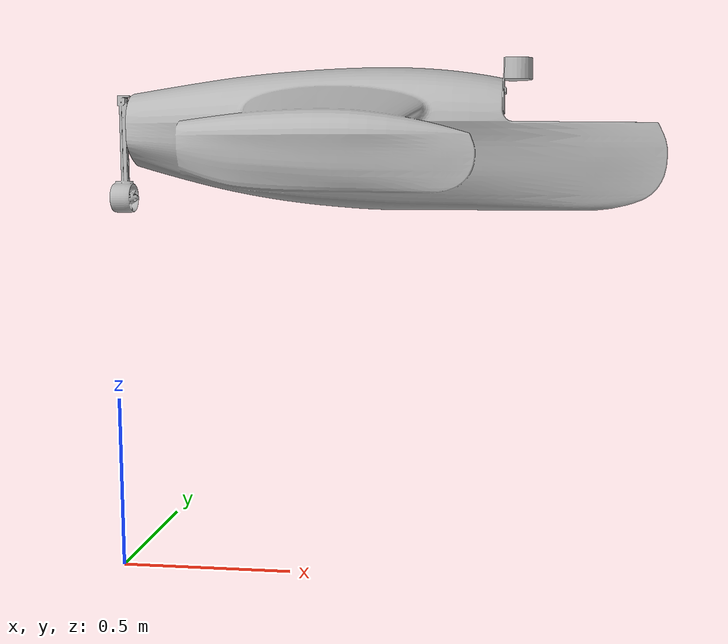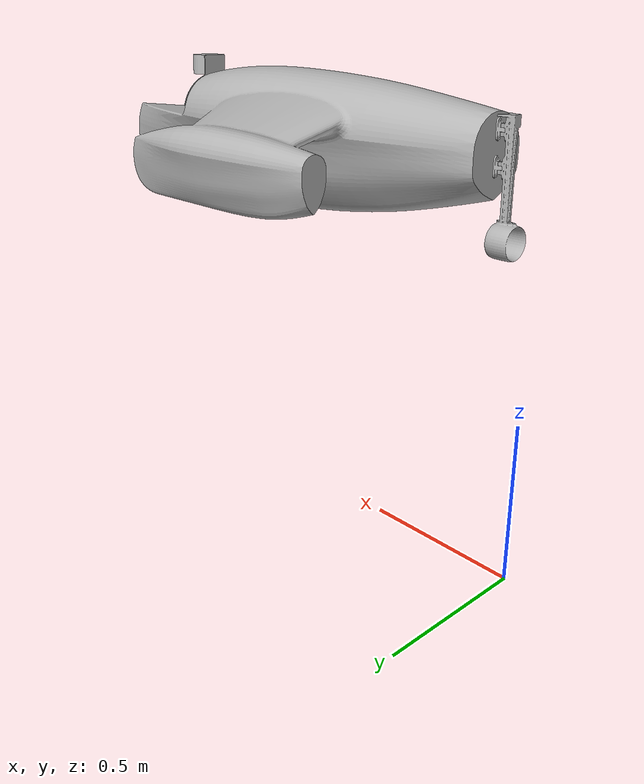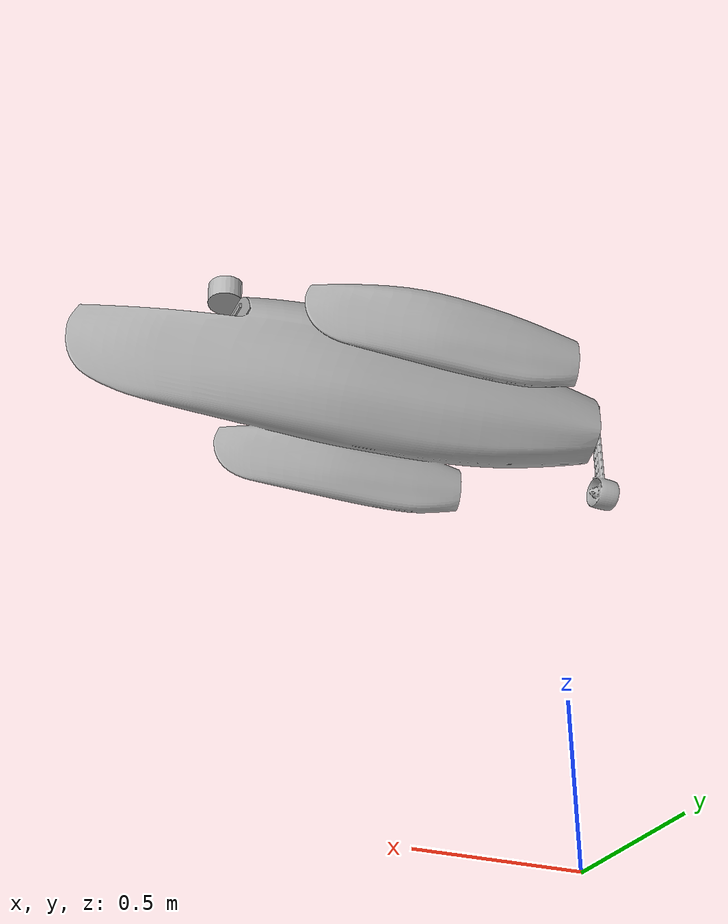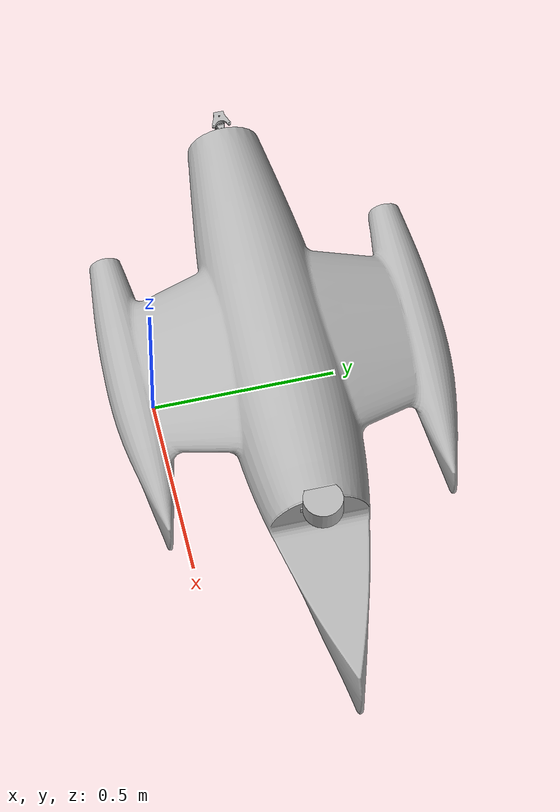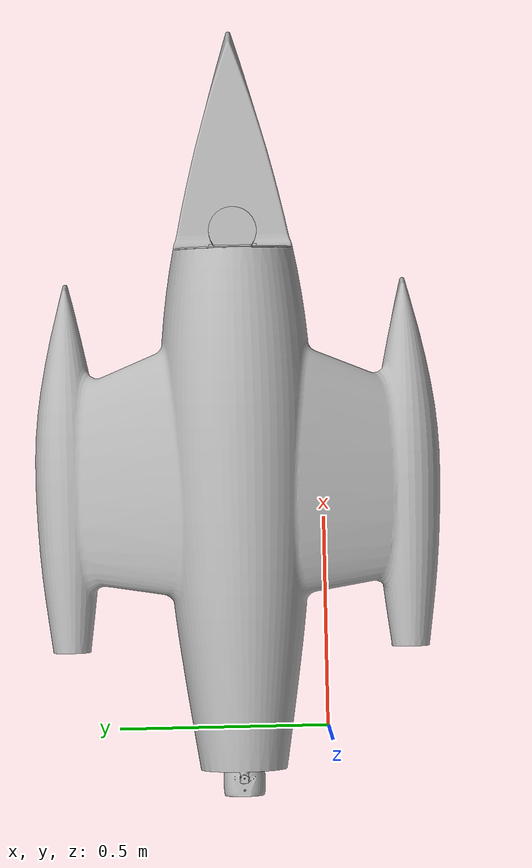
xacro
<?xml version="1.0" ?>
<robot name="trimaran" xmlns:xacro="http://www.ros.org/wiki/xacro">

  <xacro:include filename="$(find trimaran_description)/urdf/materials.xacro" />
  <xacro:include filename="$(find trimaran_description)/urdf/trimaran.trans" />
  <xacro:include filename="$(find trimaran_description)/urdf/trimaran.gazebo" />

  <link name="base_link">
    <inertial>
      <origin xyz="0.6648485249889403 0.20461584236479613 0.01115621247362629" rpy="0 0 0"/>
      <mass value="1001.9699773133253"/>
      <inertia ixx="39.351246" iyy="103.261717" izz="127.702526" ixy="-5e-06" iyz="6e-06" ixz="4.403436"/>
    </inertial>
    <visual>
      <origin xyz="0 0 0" rpy="0 0 0"/>
      <geometry>
        <mesh filename="package://trimaran_description/meshes/base_link.stl" scale="0.001 0.001 0.001"/>
      </geometry>
      <material name="silver"/>
    </visual>
    <collision>
      <origin xyz="0 0 0" rpy="0 0 0"/>
      <geometry>
        <mesh filename="package://trimaran_description/meshes/base_link.stl" scale="0.001 0.001 0.001"/>
      </geometry>
    </collision>
  </link>

  <link name="motor_1">
    <inertial>
      <origin xyz="-0.02255493599752855 -9.039549300760008e-08 -0.09281760405105702" rpy="0 0 0"/>
      <mass value="1.3337595837347622"/>
      <inertia ixx="0.017758" iyy="0.017462" izz="0.00084" ixy="0.0" iyz="0.0" ixz="-0.000377"/>
    </inertial>
    <visual>
      <origin xyz="0.015 -0.204616 -0.012382" rpy="0 0 0"/>
      <geometry>
        <mesh filename="package://trimaran_description/meshes/motor_1.stl" scale="0.001 0.001 0.001"/>
      </geometry>
      <material name="silver"/>
    </visual>
    <collision>
      <origin xyz="0.015 -0.204616 -0.012382" rpy="0 0 0"/>
      <geometry>
        <mesh filename="package://trimaran_description/meshes/motor_1.stl" scale="0.001 0.001 0.001"/>
      </geometry>
    </collision>
  </link>  <xacro:property name="camera_link" value="0.05" /> <!-- Size of square 'camera' box -->

  <link name="lidar_1">
    <inertial>
      <origin xyz="0.03641328980881897 3.8321986670086794e-07 -0.03000031530635694" rpy="0 0 0"/>
      <mass value="3.177755688824798"/>
      <inertia ixx="0.00309" iyy="0.002364" izz="0.003547" ixy="0.0" iyz="0.0" ixz="-0.0"/>
    </inertial>
    <visual>
      <origin xyz="-1.103 -0.204615 -0.231701" rpy="0 0 0"/>
      <geometry>
        <mesh filename="package://trimaran_description/meshes/lidar_1.stl" scale="0.001 0.001 0.001"/>
      </geometry>
      <material name="silver"/>
    </visual>
    <collision>
      <origin xyz="-1.103 -0.204615 -0.231701" rpy="0 0 0"/>
      <geometry>
        <mesh filename="package://trimaran_description/meshes/lidar_1.stl" scale="0.001 0.001 0.001"/>
      </geometry>
    </collision>
  </link>

  <link name="kamera_1">
    <inertial>
      <origin xyz="0.0024999999999997247 0.15519997845594385 0.14020238638943866" rpy="0 0 0"/>
      <mass value="0.05887499999999998"/>
      <inertia ixx="5e-05" iyy="1e-06" izz="4.9e-05" ixy="-0.0" iyz="0.0" ixz="0.0"/>
    </inertial>
    <visual>
      <origin xyz="-1.103 -0.049416 2e-06" rpy="0 0 0"/>
      <geometry>
        <mesh filename="package://trimaran_description/meshes/kamera_1.stl" scale="0.001 0.001 0.001"/>
      </geometry>
      <material name="silver"/>
    </visual>
    <collision>
      <origin xyz="-1.103 -0.049416 2e-06" rpy="0 0 0"/>
      <geometry>
        <mesh filename="package://trimaran_description/meshes/kamera_1.stl" scale="0.001 0.001 0.001"/>
      </geometry>
    </collision>
  </link>

  <joint name="Revolute 4" type="continuous">
    <origin xyz="-0.015 0.204616 0.012382" rpy="0 0 0"/>
    <parent link="base_link"/>
    <child link="motor_1"/>
    <axis xyz="0.0 -0.0 -1.0"/>
  </joint>

  <joint name="Rigid 6" type="fixed">
    <origin xyz="1.103 0.204615 0.231701" rpy="0 0 0"/>
    <parent link="base_link"/>
    <child link="lidar_1"/>
  </joint>

  <joint name="Rigid 7" type="fixed">
    <origin xyz="1.103 0.049416 -2e-06" rpy="0 0 0"/>
    <parent link="base_link"/>
    <child link="kamera_1"/>
  </joint>
  <!-- BU KISIM PLANAR HAREKETI SAGLIYOR  cmd vel topic ini kullanarak duzlemsel hareket yapilabilir-->
  <link name="base_footprint">
   <visual>
      <origin xyz="0 0 0" rpy="0 0 0" />
      <geometry>
        <box size="0.001 0.001 0.001" />
      </geometry>
    </visual>
  </link>
  <joint name="base_link_joint" type="fixed">
      <origin xyz="0 0 1.25" rpy="0 0 0" />
      <parent link="base_footprint"/>
      <child link="base_link" />
    </joint>
  <gazebo>
    <plugin name="object_controller" filename="libgazebo_ros_planar_move.so">
      <commandTopic>cmd_vel</commandTopic>
      <odometryTopic>odom</odometryTopic>
      <odometryFrame>odom</odometryFrame>
      <odometryRate>20.0</odometryRate>
      <robotBaseFrame>base_footprint</robotBaseFrame>
    </plugin>
  </gazebo>
</robot>

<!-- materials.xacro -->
<robot name="trimaran" xmlns:xacro="http://www.ros.org/wiki/xacro" >

<material name="silver">
  <color rgba="0.700 0.700 0.700 1.000"/>
</material>

</robot>

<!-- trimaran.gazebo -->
<robot name="trimaran" xmlns:xacro="http://www.ros.org/wiki/xacro" >

<xacro:property name="body_color" value="Gazebo/Silver" />
<xacro:property name="kamera_1" value="0.001" /> <!-- Size of square 'camera' box -->

<gazebo>
  <plugin name="control" filename="libgazebo_ros_control.so"/>
</gazebo>
<gazebo reference="base_link">
  <material>${body_color}</material>
  <mu1>0.2</mu1>
  <mu2>0.2</mu2>
  <selfCollide>true</selfCollide>
  <gravity>true</gravity>
</gazebo>

<gazebo reference="motor_1">
  <material>${body_color}</material>
  <mu1>0.2</mu1>
  <mu2>0.2</mu2>
  <selfCollide>true</selfCollide>
</gazebo>

<gazebo reference="lidar_1">
  <material>${body_color}</material>
  <mu1>0.2</mu1>
  <mu2>0.2</mu2>
  <selfCollide>true</selfCollide>
  <sensor type="ray" name="head_hokuyo_sensor">
      <pose>0 0 0 0 0 0</pose>
      <visualize>true</visualize>
      <update_rate>50</update_rate>
      <ray>
        <scan>
          <horizontal>
            <samples>720</samples>
            <resolution>1</resolution>
            <min_angle>-2.35619</min_angle>
            <max_angle>2.35619</max_angle>
          </horizontal>
        </scan>
        <range>
          <min>0.05</min>
          <max>25.0</max>
          <resolution>0.01</resolution>
        </range>
        <noise>
          <type>gaussian</type>
          <mean>0.0</mean>
          <stddev>0.01</stddev>
        </noise>
      </ray>
      <plugin name="gazebo_ros_head_hokuyo_controller" filename="libgazebo_ros_laser.so">
        <topicName>/laser/scan</topicName>
        <frameName>lidar_1</frameName>
      </plugin>
    </sensor>
</gazebo>

<gazebo reference="kamera_1">
  <material>${body_color}</material>
  <mu1>0.2</mu1>
  <mu2>0.2</mu2>
  <selfCollide>true</selfCollide>
  <sensor type="camera" name="camera">
      <update_rate>30.0</update_rate>
      <camera name="head">
        <horizontal_fov>1.3962634</horizontal_fov>
        <image>
          <width>800</width>
          <height>800</height>
          <format>R8G8B8</format>
        </image>
        <clip>
          <near>0.02</near>
          <far>300</far>
        </clip>
        <noise>
          <type>gaussian</type>
          <!-- Noise is sampled independently per pixel on each frame.
               That pixel's noise value is added to each of its color
               channels, which at that point lie in the range [0,1]. -->
          <mean>0.0</mean>
          <stddev>0.007</stddev>
        </noise>
      </camera>
      <plugin name="camera_controller" filename="libgazebo_ros_camera.so">
        <alwaysOn>true</alwaysOn>
        <updateRate>0.0</updateRate>
        <cameraName>camera</cameraName>
        <imageTopicName>image_raw</imageTopicName>
        <cameraInfoTopicName>camera_info</cameraInfoTopicName>
        <frameName>camera_link</frameName>
        <hackBaseline>0.07</hackBaseline>
        <distortionK1>0.0</distortionK1>
        <distortionK2>0.0</distortionK2>
        <distortionK3>0.0</distortionK3>
        <distortionT1>0.0</distortionT1>
        <distortionT2>0.0</distortionT2>
      </plugin>
    </sensor>
</gazebo>

</robot>
